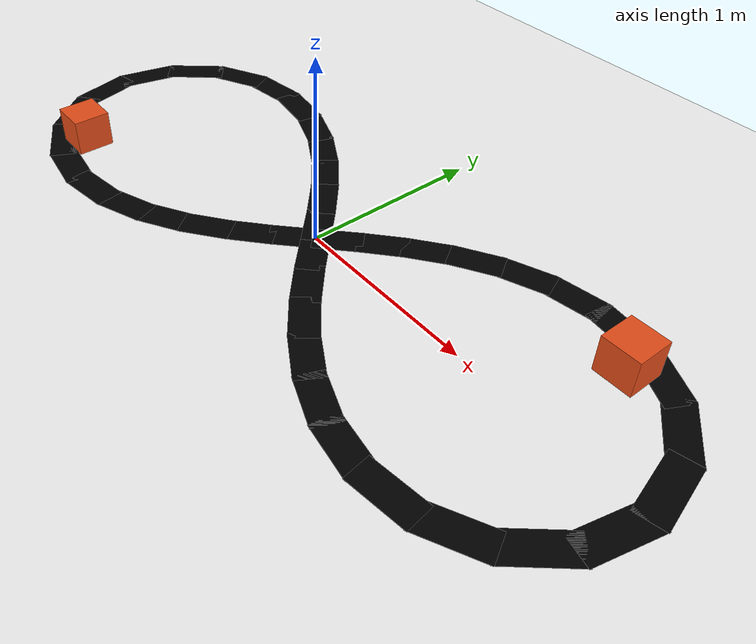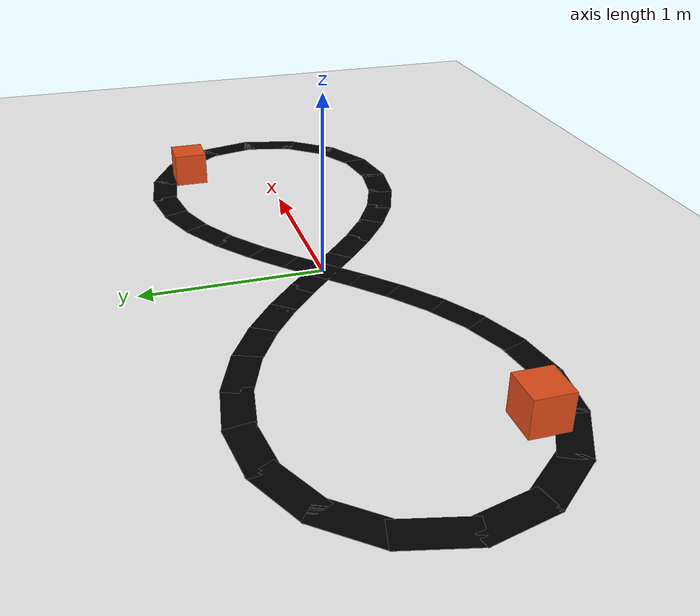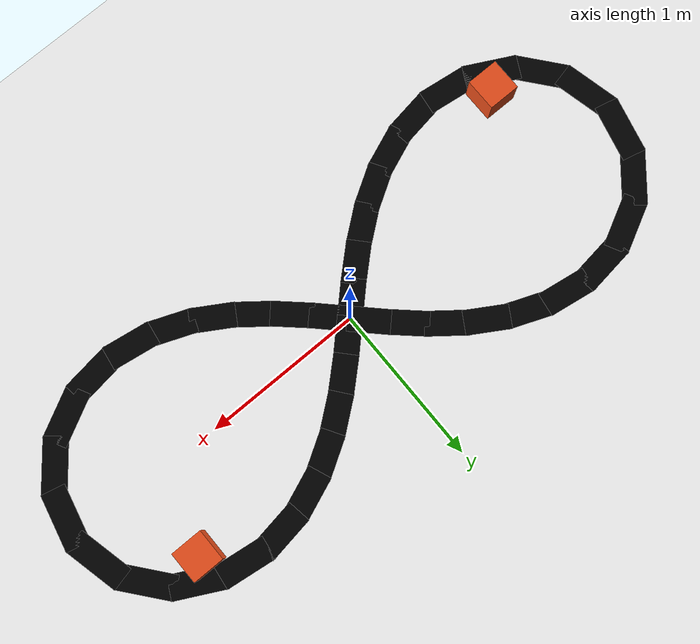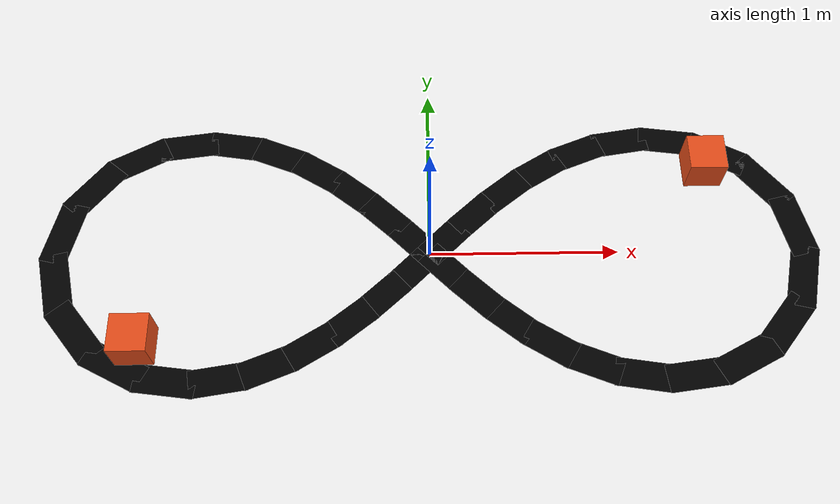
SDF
<?xml version="1.0" ?>
<sdf version="1.6">
  <world name="line_track_world">

    <!-- === PHYSICS === -->
    <physics type="ode">
      <real_time_update_rate>1000.0</real_time_update_rate>
      <max_step_size>0.001</max_step_size>
      <real_time_factor>1</real_time_factor>
      <ode>
        <solver>
          <type>quick</type>
          <iters>150</iters>
          <precon_iters>0</precon_iters>
          <sor>1.400000</sor>
          <use_dynamic_moi_rescaling>1</use_dynamic_moi_rescaling>
        </solver>
        <constraints>
          <cfm>0.00001</cfm>
          <erp>0.2</erp>
          <contact_max_correcting_vel>2000.000000</contact_max_correcting_vel>
          <contact_surface_layer>0.01000</contact_surface_layer>
        </constraints>
      </ode>
    </physics>

    <!-- === LIGHTING === -->
    <include>
      <uri>model://sun</uri>
    </include>

    <!-- Additional overhead light for better camera visibility -->
    <light name="overhead_light" type="directional">
      <cast_shadows>false</cast_shadows>
      <pose>0 0 10 0 0 0</pose>
      <diffuse>0.8 0.8 0.8 1</diffuse>
      <specular>0.2 0.2 0.2 1</specular>
      <direction>0 0 -1</direction>
    </light>

    <!-- === WHITE GROUND PLANE === -->
    <model name="white_ground">
      <static>true</static>
      <link name="ground_link">
        <collision name="collision">
          <geometry>
            <plane>
              <normal>0 0 1</normal>
              <size>20 20</size>
            </plane>
          </geometry>
          <surface>
            <friction>
              <ode>
                <mu>100</mu>
                <mu2>50</mu2>
              </ode>
            </friction>
          </surface>
        </collision>
        <visual name="visual">
          <geometry>
            <plane>
              <normal>0 0 1</normal>
              <size>20 20</size>
            </plane>
          </geometry>
          <material>
            <ambient>0.9 0.9 0.9 1</ambient>
            <diffuse>0.95 0.95 0.95 1</diffuse>
            <specular>0.1 0.1 0.1 1</specular>
          </material>
        </visual>
      </link>
    </model>

    <!-- === INFINITY (∞) LINE TRACK === -->
    <include>
      <uri>model://line_track</uri>
      <pose>0 0 0 0 0 0</pose>
    </include>

    <!-- === OBSTACLE 1: On the right loop of the infinity === -->
    <include>
      <uri>model://obstacle_box</uri>
      <name>obstacle_1</name>
      <pose>1.5 0.5 0.1 0 0 0</pose>
    </include>

    <!-- === OBSTACLE 2: On the left loop of the infinity === -->
    <include>
      <uri>model://obstacle_box</uri>
      <name>obstacle_2</name>
      <pose>-1.5 -0.5 0.1 0 0 0</pose>
    </include>

    <!-- === SCENE SETTINGS === -->
    <scene>
      <shadows>false</shadows>
      <ambient>0.6 0.6 0.6 1</ambient>
      <background>0.7 0.8 0.9 1</background>
    </scene>

    <!-- === GUI CAMERA (top-down view of infinity track) === -->
    <gui fullscreen='0'>
      <camera name='user_camera'>
        <pose>0 0 8 0 1.5708 0</pose>
        <view_controller>orbit</view_controller>
        <projection_type>perspective</projection_type>
      </camera>
    </gui>

  </world>
</sdf>

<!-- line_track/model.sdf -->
<sdf version="1.6">
  <model name="line_track">
    <static>true</static>
    <link name="track_link">

      <visual name="seg_0">
        <pose>1.9641 0.1508 0.001 0 0 1.8045</pose>
        <geometry><box><size>0.3566 0.15 0.002</size></box></geometry>
        <material><ambient>0 0 0 1</ambient><diffuse>0 0 0 1</diffuse></material>
      </visual>
      <visual name="seg_1">
        <pose>1.8323 0.4191 0.001 0 0 2.2557</pose>
        <geometry><box><size>0.3488 0.15 0.002</size></box></geometry>
        <material><ambient>0 0 0 1</ambient><diffuse>0 0 0 1</diffuse></material>
      </visual>
      <visual name="seg_2">
        <pose>1.6069 0.6037 0.001 0 0 2.6632</pose>
        <geometry><box><size>0.3353 0.15 0.002</size></box></geometry>
        <material><ambient>0 0 0 1</ambient><diffuse>0 0 0 1</diffuse></material>
      </visual>
      <visual name="seg_3">
        <pose>1.3400 0.6888 0.001 0 0 3.0111</pose>
        <geometry><box><size>0.3189 0.15 0.002</size></box></geometry>
        <material><ambient>0 0 0 1</ambient><diffuse>0 0 0 1</diffuse></material>
      </visual>
      <visual name="seg_4">
        <pose>1.0727 0.6868 0.001 0 0 -2.9881</pose>
        <geometry><box><size>0.3023 0.15 0.002</size></box></geometry>
        <material><ambient>0 0 0 1</ambient><diffuse>0 0 0 1</diffuse></material>
      </visual>
      <visual name="seg_5">
        <pose>0.8267 0.6207 0.001 0 0 -2.7651</pose>
        <geometry><box><size>0.2872 0.15 0.002</size></box></geometry>
        <material><ambient>0 0 0 1</ambient><diffuse>0 0 0 1</diffuse></material>
      </visual>
      <visual name="seg_6">
        <pose>0.6083 0.5129 0.001 0 0 -2.5968</pose>
        <geometry><box><size>0.2748 0.15 0.002</size></box></geometry>
        <material><ambient>0 0 0 1</ambient><diffuse>0 0 0 1</diffuse></material>
      </visual>
      <visual name="seg_7">
        <pose>0.4153 0.3798 0.001 0 0 -2.4769</pose>
        <geometry><box><size>0.2654 0.15 0.002</size></box></geometry>
        <material><ambient>0 0 0 1</ambient><diffuse>0 0 0 1</diffuse></material>
      </visual>
      <visual name="seg_8">
        <pose>0.2414 0.2325 0.001 0 0 -2.3999</pose>
        <geometry><box><size>0.2591 0.15 0.002</size></box></geometry>
        <material><ambient>0 0 0 1</ambient><diffuse>0 0 0 1</diffuse></material>
      </visual>
      <visual name="seg_9">
        <pose>0.0792 0.0782 0.001 0 0 -2.3624</pose>
        <geometry><box><size>0.2560 0.15 0.002</size></box></geometry>
        <material><ambient>0 0 0 1</ambient><diffuse>0 0 0 1</diffuse></material>
      </visual>
      <visual name="seg_10">
        <pose>-0.0792 -0.0782 0.001 0 0 -2.3624</pose>
        <geometry><box><size>0.2560 0.15 0.002</size></box></geometry>
        <material><ambient>0 0 0 1</ambient><diffuse>0 0 0 1</diffuse></material>
      </visual>
      <visual name="seg_11">
        <pose>-0.2414 -0.2325 0.001 0 0 -2.3999</pose>
        <geometry><box><size>0.2591 0.15 0.002</size></box></geometry>
        <material><ambient>0 0 0 1</ambient><diffuse>0 0 0 1</diffuse></material>
      </visual>
      <visual name="seg_12">
        <pose>-0.4153 -0.3798 0.001 0 0 -2.4769</pose>
        <geometry><box><size>0.2654 0.15 0.002</size></box></geometry>
        <material><ambient>0 0 0 1</ambient><diffuse>0 0 0 1</diffuse></material>
      </visual>
      <visual name="seg_13">
        <pose>-0.6083 -0.5129 0.001 0 0 -2.5968</pose>
        <geometry><box><size>0.2748 0.15 0.002</size></box></geometry>
        <material><ambient>0 0 0 1</ambient><diffuse>0 0 0 1</diffuse></material>
      </visual>
      <visual name="seg_14">
        <pose>-0.8267 -0.6207 0.001 0 0 -2.7651</pose>
        <geometry><box><size>0.2872 0.15 0.002</size></box></geometry>
        <material><ambient>0 0 0 1</ambient><diffuse>0 0 0 1</diffuse></material>
      </visual>
      <visual name="seg_15">
        <pose>-1.0727 -0.6868 0.001 0 0 -2.9881</pose>
        <geometry><box><size>0.3023 0.15 0.002</size></box></geometry>
        <material><ambient>0 0 0 1</ambient><diffuse>0 0 0 1</diffuse></material>
      </visual>
      <visual name="seg_16">
        <pose>-1.3400 -0.6888 0.001 0 0 3.0111</pose>
        <geometry><box><size>0.3189 0.15 0.002</size></box></geometry>
        <material><ambient>0 0 0 1</ambient><diffuse>0 0 0 1</diffuse></material>
      </visual>
      <visual name="seg_17">
        <pose>-1.6069 -0.6037 0.001 0 0 2.6632</pose>
        <geometry><box><size>0.3353 0.15 0.002</size></box></geometry>
        <material><ambient>0 0 0 1</ambient><diffuse>0 0 0 1</diffuse></material>
      </visual>
      <visual name="seg_18">
        <pose>-1.8323 -0.4191 0.001 0 0 2.2557</pose>
        <geometry><box><size>0.3488 0.15 0.002</size></box></geometry>
        <material><ambient>0 0 0 1</ambient><diffuse>0 0 0 1</diffuse></material>
      </visual>
      <visual name="seg_19">
        <pose>-1.9641 -0.1508 0.001 0 0 1.8045</pose>
        <geometry><box><size>0.3566 0.15 0.002</size></box></geometry>
        <material><ambient>0 0 0 1</ambient><diffuse>0 0 0 1</diffuse></material>
      </visual>
      <visual name="seg_20">
        <pose>-1.9641 0.1508 0.001 0 0 1.3371</pose>
        <geometry><box><size>0.3566 0.15 0.002</size></box></geometry>
        <material><ambient>0 0 0 1</ambient><diffuse>0 0 0 1</diffuse></material>
      </visual>
      <visual name="seg_21">
        <pose>-1.8323 0.4191 0.001 0 0 0.8859</pose>
        <geometry><box><size>0.3488 0.15 0.002</size></box></geometry>
        <material><ambient>0 0 0 1</ambient><diffuse>0 0 0 1</diffuse></material>
      </visual>
      <visual name="seg_22">
        <pose>-1.6069 0.6037 0.001 0 0 0.4784</pose>
        <geometry><box><size>0.3353 0.15 0.002</size></box></geometry>
        <material><ambient>0 0 0 1</ambient><diffuse>0 0 0 1</diffuse></material>
      </visual>
      <visual name="seg_23">
        <pose>-1.3400 0.6888 0.001 0 0 0.1305</pose>
        <geometry><box><size>0.3189 0.15 0.002</size></box></geometry>
        <material><ambient>0 0 0 1</ambient><diffuse>0 0 0 1</diffuse></material>
      </visual>
      <visual name="seg_24">
        <pose>-1.0727 0.6868 0.001 0 0 -0.1535</pose>
        <geometry><box><size>0.3023 0.15 0.002</size></box></geometry>
        <material><ambient>0 0 0 1</ambient><diffuse>0 0 0 1</diffuse></material>
      </visual>
      <visual name="seg_25">
        <pose>-0.8267 0.6207 0.001 0 0 -0.3765</pose>
        <geometry><box><size>0.2872 0.15 0.002</size></box></geometry>
        <material><ambient>0 0 0 1</ambient><diffuse>0 0 0 1</diffuse></material>
      </visual>
      <visual name="seg_26">
        <pose>-0.6083 0.5129 0.001 0 0 -0.5448</pose>
        <geometry><box><size>0.2748 0.15 0.002</size></box></geometry>
        <material><ambient>0 0 0 1</ambient><diffuse>0 0 0 1</diffuse></material>
      </visual>
      <visual name="seg_27">
        <pose>-0.4153 0.3798 0.001 0 0 -0.6647</pose>
        <geometry><box><size>0.2654 0.15 0.002</size></box></geometry>
        <material><ambient>0 0 0 1</ambient><diffuse>0 0 0 1</diffuse></material>
      </visual>
      <visual name="seg_28">
        <pose>-0.2414 0.2325 0.001 0 0 -0.7417</pose>
        <geometry><box><size>0.2591 0.15 0.002</size></box></geometry>
        <material><ambient>0 0 0 1</ambient><diffuse>0 0 0 1</diffuse></material>
      </visual>
      <visual name="seg_29">
        <pose>-0.0792 0.0782 0.001 0 0 -0.7792</pose>
        <geometry><box><size>0.2560 0.15 0.002</size></box></geometry>
        <material><ambient>0 0 0 1</ambient><diffuse>0 0 0 1</diffuse></material>
      </visual>
      <visual name="seg_30">
        <pose>0.0792 -0.0782 0.001 0 0 -0.7792</pose>
        <geometry><box><size>0.2560 0.15 0.002</size></box></geometry>
        <material><ambient>0 0 0 1</ambient><diffuse>0 0 0 1</diffuse></material>
      </visual>
      <visual name="seg_31">
        <pose>0.2414 -0.2325 0.001 0 0 -0.7417</pose>
        <geometry><box><size>0.2591 0.15 0.002</size></box></geometry>
        <material><ambient>0 0 0 1</ambient><diffuse>0 0 0 1</diffuse></material>
      </visual>
      <visual name="seg_32">
        <pose>0.4153 -0.3798 0.001 0 0 -0.6647</pose>
        <geometry><box><size>0.2654 0.15 0.002</size></box></geometry>
        <material><ambient>0 0 0 1</ambient><diffuse>0 0 0 1</diffuse></material>
      </visual>
      <visual name="seg_33">
        <pose>0.6083 -0.5129 0.001 0 0 -0.5448</pose>
        <geometry><box><size>0.2748 0.15 0.002</size></box></geometry>
        <material><ambient>0 0 0 1</ambient><diffuse>0 0 0 1</diffuse></material>
      </visual>
      <visual name="seg_34">
        <pose>0.8267 -0.6207 0.001 0 0 -0.3765</pose>
        <geometry><box><size>0.2872 0.15 0.002</size></box></geometry>
        <material><ambient>0 0 0 1</ambient><diffuse>0 0 0 1</diffuse></material>
      </visual>
      <visual name="seg_35">
        <pose>1.0727 -0.6868 0.001 0 0 -0.1535</pose>
        <geometry><box><size>0.3023 0.15 0.002</size></box></geometry>
        <material><ambient>0 0 0 1</ambient><diffuse>0 0 0 1</diffuse></material>
      </visual>
      <visual name="seg_36">
        <pose>1.3400 -0.6888 0.001 0 0 0.1305</pose>
        <geometry><box><size>0.3189 0.15 0.002</size></box></geometry>
        <material><ambient>0 0 0 1</ambient><diffuse>0 0 0 1</diffuse></material>
      </visual>
      <visual name="seg_37">
        <pose>1.6069 -0.6037 0.001 0 0 0.4784</pose>
        <geometry><box><size>0.3353 0.15 0.002</size></box></geometry>
        <material><ambient>0 0 0 1</ambient><diffuse>0 0 0 1</diffuse></material>
      </visual>
      <visual name="seg_38">
        <pose>1.8323 -0.4191 0.001 0 0 0.8859</pose>
        <geometry><box><size>0.3488 0.15 0.002</size></box></geometry>
        <material><ambient>0 0 0 1</ambient><diffuse>0 0 0 1</diffuse></material>
      </visual>
      <visual name="seg_39">
        <pose>1.9641 -0.1508 0.001 0 0 1.3371</pose>
        <geometry><box><size>0.3566 0.15 0.002</size></box></geometry>
        <material><ambient>0 0 0 1</ambient><diffuse>0 0 0 1</diffuse></material>
      </visual>

    </link>
  </model>
</sdf>

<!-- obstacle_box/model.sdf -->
<sdf version="1.6">
  <model name="obstacle_box">
    <static>true</static>
    <link name="link">
      <collision name="collision">
        <geometry>
          <box>
            <size>0.2 0.2 0.2</size>
          </box>
        </geometry>
      </collision>
      <visual name="visual">
        <geometry>
          <box>
            <size>0.2 0.2 0.2</size>
          </box>
        </geometry>
        <material>
          <ambient>0.8 0.2 0.1 1</ambient>
          <diffuse>0.9 0.3 0.1 1</diffuse>
          <specular>0.5 0.5 0.5 1</specular>
        </material>
      </visual>
    </link>
  </model>
</sdf>
